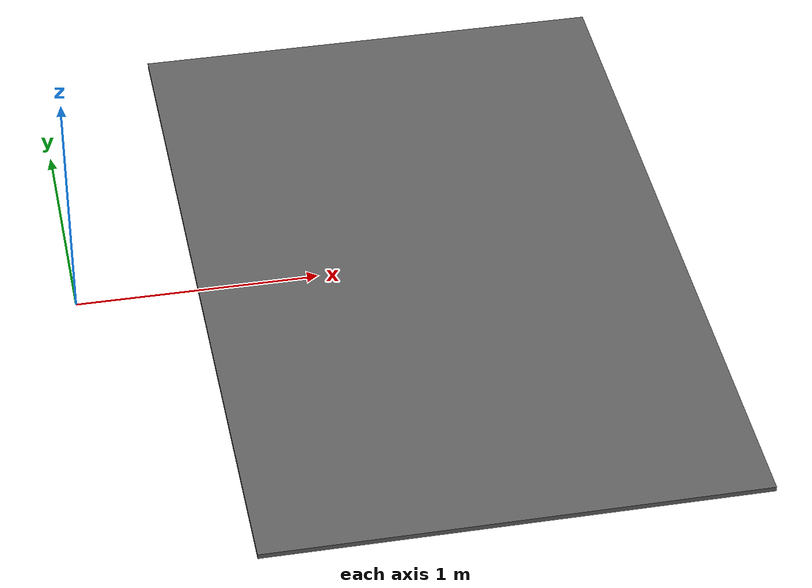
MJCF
<mujoco model="stairs">
  <!-- Simple five-step staircase located in front of the robot. -->
  <worldbody>
    <body name="stairs" pos="1.5 0 0">

      <!-- Each box: size = half-dimensions (length, width, height) -->

      <!-- Test -->
      <geom name="step1_low" type="box" size="1.0 1.6 0.01" pos="0.0 0.0 0.01" rgba="0.4 0.4 0.4 1" friction="0.8 0.1 0.001"/>

    </body>
  </worldbody>
</mujoco>
